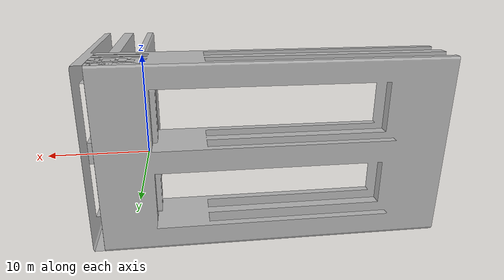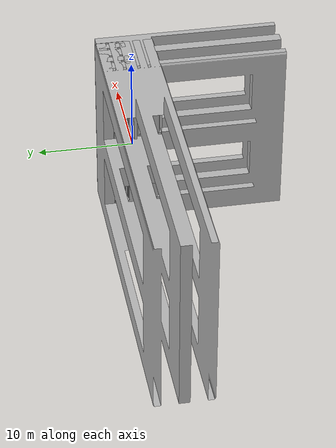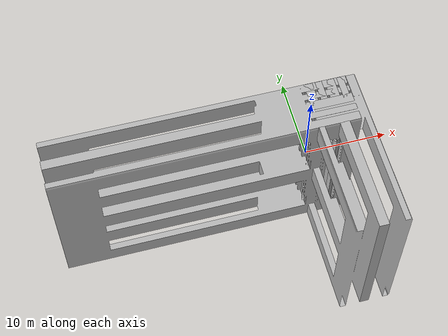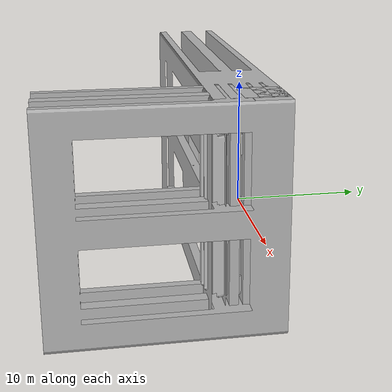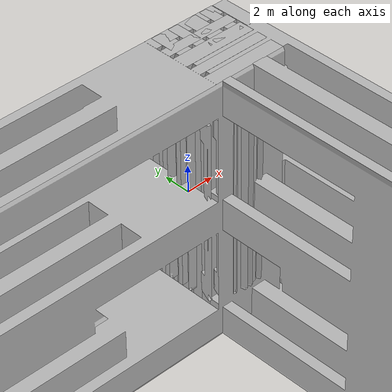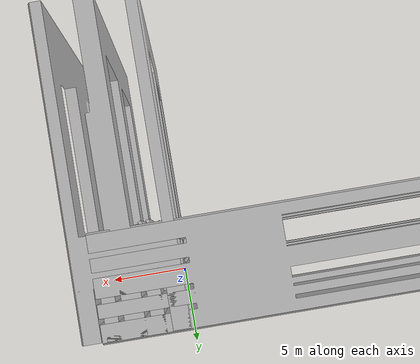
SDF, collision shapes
<sdf version='1.4'>
	<model name='2pallets+stepping_blocks'>
		<static>1</static>
		<link name='pallet_1'>
			<pose>-0.5 0 0.072 0 0 -1.5708</pose>
			<collision name='collision'>
				<geometry>
					<mesh>
						<uri>model://pallet_benchmark/mesh/pallet.dae</uri>
						<scale>0.787 24.75 1.6197</scale>
					</mesh>
				</geometry>
				<surface>
					<bounce>
						<restitution_coefficient>0.01</restitution_coefficient>
						<threshold>5</threshold>
					</bounce>
					<friction>
						<ode>
							<mu>10</mu>
							<mu2>10</mu2>
						</ode>
					</friction>
					<contact>
						<ode>
							<soft_cfm>0.001</soft_cfm>
							<kp>100000</kp>
							<kd>1000</kd>
						</ode>
					</contact>
				</surface>
				<max_contacts>10</max_contacts>
			</collision>
			<visual name='visual'>
				<geometry>
					<mesh>
						<uri>model://pallet_benchmark/mesh/pallet.dae</uri>
						<scale>0.787 24.75 1.6197</scale>
					</mesh>
				</geometry>
			</visual>
		</link>
		<link name='pallet_2'>
			<pose>3 0 0.072 0 -0 0</pose>
			<collision name='collision'>
				<geometry>
					<mesh>
						<uri>model://pallet_benchmark/mesh/pallet.dae</uri>
						<scale>0.787 13.50 1.6197</scale>
					</mesh>
				</geometry>
				<surface>
					<bounce>
						<restitution_coefficient>0.01</restitution_coefficient>
						<threshold>5</threshold>
					</bounce>
					<friction>
						<ode>
							<mu>10</mu>
							<mu2>10</mu2>
						</ode>
					</friction>
					<contact>
						<ode>
							<soft_cfm>0.001</soft_cfm>
							<kp>100000</kp>
							<kd>1000</kd>
						</ode>
					</contact>
				</surface>
				<max_contacts>10</max_contacts>
			</collision>
			<visual name='visual'>
				<geometry>
					<mesh>
						<uri>model://pallet_benchmark/mesh/pallet.dae</uri>
						<scale>0.787 13.50 1.6197</scale>
					</mesh>
				</geometry>
			</visual>
		</link>
		<link name='block_1'>
			<pose>0.783136 -0.259336 0.05 0 -0 0.8</pose>
			<collision name='collision'>
				<geometry>
					<mesh>
						<uri>model://blockwood_benchmark/mesh/pallet.dae</uri>
						<scale>0.246 2.46 1.1249</scale>
					</mesh>
				</geometry>
				<surface>
					<bounce>
						<restitution_coefficient>0.01</restitution_coefficient>
						<threshold>5</threshold>
					</bounce>
					<friction>
						<ode>
							<mu>10</mu>
							<mu2>10</mu2>
						</ode>
					</friction>
					<contact>
						<ode>
							<soft_cfm>0.001</soft_cfm>
							<kp>100000</kp>
							<kd>1000</kd>
						</ode>
					</contact>
				</surface>
				<max_contacts>10</max_contacts>
			</collision>
			<visual name='visual'>
				<geometry>
					<mesh>
						<uri>model://blockwood_benchmark/mesh/pallet.dae</uri>
						<scale>0.246 2.46 1.1249</scale>
					</mesh>
				</geometry>
			</visual>
		</link>
		<link name='block_2'>
			<pose>0.794058 0.11412 0.05 0 -0 0.56</pose>
			<collision name='collision'>
				<geometry>
					<mesh>
						<uri>model://blockwood_benchmark/mesh/pallet.dae</uri>
						<scale>0.246 2.46 1.1249</scale>
					</mesh>
				</geometry>
				<surface>
					<bounce>
						<restitution_coefficient>0.01</restitution_coefficient>
						<threshold>5</threshold>
					</bounce>
					<friction>
						<ode>
							<mu>10</mu>
							<mu2>10</mu2>
						</ode>
					</friction>
					<contact>
						<ode>
							<soft_cfm>0.001</soft_cfm>
							<kp>100000</kp>
							<kd>1000</kd>
						</ode>
					</contact>
				</surface>
				<max_contacts>10</max_contacts>
			</collision>
			<visual name='visual'>
				<geometry>
					<mesh>
						<uri>model://blockwood_benchmark/mesh/pallet.dae</uri>
						<scale>0.246 2.46 1.1249</scale>
					</mesh>
				</geometry>
			</visual>
		</link>
		<link name='block_3'>
			<pose>1.09791 -0.142692 0.05 0 0 -0.36</pose>
			<collision name='collision'>
				<geometry>
					<mesh>
						<uri>model://blockwood_benchmark/mesh/pallet.dae</uri>
						<scale>0.246 2.46 1.1249</scale>
					</mesh>
				</geometry>
				<surface>
					<bounce>
						<restitution_coefficient>0.01</restitution_coefficient>
						<threshold>5</threshold>
					</bounce>
					<friction>
						<ode>
							<mu>10</mu>
							<mu2>10</mu2>
						</ode>
					</friction>
					<contact>
						<ode>
							<soft_cfm>0.001</soft_cfm>
							<kp>100000</kp>
							<kd>1000</kd>
						</ode>
					</contact>
				</surface>
				<max_contacts>10</max_contacts>
			</collision>
			<visual name='visual'>
				<geometry>
					<mesh>
						<uri>model://blockwood_benchmark/mesh/pallet.dae</uri>
						<scale>0.246 2.46 1.1249</scale>
					</mesh>
				</geometry>
			</visual>
		</link>
		<link name='block_4'>
			<pose>1.16288 0.17517 0.05 0 -0 0</pose>
			<collision name='collision'>
				<geometry>
					<mesh>
						<uri>model://blockwood_benchmark/mesh/pallet.dae</uri>
						<scale>0.246 2.46 1.1249</scale>
					</mesh>
				</geometry>
				<surface>
					<bounce>
						<restitution_coefficient>0.01</restitution_coefficient>
						<threshold>5</threshold>
					</bounce>
					<friction>
						<ode>
							<mu>10</mu>
							<mu2>10</mu2>
						</ode>
					</friction>
					<contact>
						<ode>
							<soft_cfm>0.001</soft_cfm>
							<kp>100000</kp>
							<kd>1000</kd>
						</ode>
					</contact>
				</surface>
				<max_contacts>10</max_contacts>
			</collision>
			<visual name='visual'>
				<geometry>
					<mesh>
						<uri>model://blockwood_benchmark/mesh/pallet.dae</uri>
						<scale>0.246 2.46 1.1249</scale>
					</mesh>
				</geometry>
			</visual>
		</link>
		<link name='block_5'>
			<pose>1.37008 -0.40017 0.05 0 -0 0.52</pose>
			<collision name='collision'>
				<geometry>
					<mesh>
						<uri>model://blockwood_benchmark/mesh/pallet.dae</uri>
						<scale>0.246 2.46 1.1249</scale>
					</mesh>
				</geometry>
				<surface>
					<bounce>
						<restitution_coefficient>0.01</restitution_coefficient>
						<threshold>5</threshold>
					</bounce>
					<friction>
						<ode>
							<mu>10</mu>
							<mu2>10</mu2>
						</ode>
					</friction>
					<contact>
						<ode>
							<soft_cfm>0.001</soft_cfm>
							<kp>100000</kp>
							<kd>1000</kd>
						</ode>
					</contact>
				</surface>
				<max_contacts>10</max_contacts>
			</collision>
			<visual name='visual'>
				<geometry>
					<mesh>
						<uri>model://blockwood_benchmark/mesh/pallet.dae</uri>
						<scale>0.246 2.46 1.1249</scale>
					</mesh>
				</geometry>
			</visual>
		</link>
		<link name='block_6'>
			<pose>1.46639 -0.072299 0.05 0 -0 0</pose>
			<collision name='collision'>
				<geometry>
					<mesh>
						<uri>model://blockwood_benchmark/mesh/pallet.dae</uri>
						<scale>0.246 2.46 1.1249</scale>
					</mesh>
				</geometry>
				<surface>
					<bounce>
						<restitution_coefficient>0.01</restitution_coefficient>
						<threshold>5</threshold>
					</bounce>
					<friction>
						<ode>
							<mu>10</mu>
							<mu2>10</mu2>
						</ode>
					</friction>
					<contact>
						<ode>
							<soft_cfm>0.001</soft_cfm>
							<kp>100000</kp>
							<kd>1000</kd>
						</ode>
					</contact>
				</surface>
				<max_contacts>10</max_contacts>
			</collision>
			<visual name='visual'>
				<geometry>
					<mesh>
						<uri>model://blockwood_benchmark/mesh/pallet.dae</uri>
						<scale>0.246 2.46 1.1249</scale>
					</mesh>
				</geometry>
			</visual>
		</link>
		<link name='block_7'>
			<pose>1.48533 0.241091 0.05 0 -0 0.88</pose>
			<collision name='collision'>
				<geometry>
					<mesh>
						<uri>model://blockwood_benchmark/mesh/pallet.dae</uri>
						<scale>0.246 2.46 1.1249</scale>
					</mesh>
				</geometry>
				<surface>
					<bounce>
						<restitution_coefficient>0.01</restitution_coefficient>
						<threshold>5</threshold>
					</bounce>
					<friction>
						<ode>
							<mu>10</mu>
							<mu2>10</mu2>
						</ode>
					</friction>
					<contact>
						<ode>
							<soft_cfm>0.001</soft_cfm>
							<kp>100000</kp>
							<kd>1000</kd>
						</ode>
					</contact>
				</surface>
				<max_contacts>10</max_contacts>
			</collision>
		<visual name='visual'>
			<geometry>
				<mesh>
					<uri>model://blockwood_benchmark/mesh/pallet.dae</uri>
					<scale>0.246 2.46 1.1249</scale>
				</mesh>
			</geometry>
		</visual>
	</link>
	<link name='block_8'>
		<pose>1.7306 -0.340131 0.05 0 -0 0.24</pose>
		<collision name='collision'>
			<geometry>
				<mesh>
					<uri>model://blockwood_benchmark/mesh/pallet.dae</uri>
					<scale>0.246 2.46 1.1249</scale>
				</mesh>
			</geometry>
			<surface>
				<bounce>
					<restitution_coefficient>0.01</restitution_coefficient>
					<threshold>5</threshold>
				</bounce>
				<friction>
					<ode>
						<mu>10</mu>
						<mu2>10</mu2>
					</ode>
				</friction>
				<contact>
					<ode>
						<soft_cfm>0.001</soft_cfm>
						<kp>100000</kp>
						<kd>1000</kd>
					</ode>
				</contact>
			</surface>
			<max_contacts>10</max_contacts>
		</collision>
		<visual name='visual'>
			<geometry>
				<mesh>
					<uri>model://blockwood_benchmark/mesh/pallet.dae</uri>
					<scale>0.246 2.46 1.1249</scale>
				</mesh>
			</geometry>
		</visual>
	</link>
	<link name='block_9'>
		<pose>1.77848 0.045718 0.05 0 -0 0.48</pose>
		<collision name='collision'>
			<geometry>
				<mesh>
					<uri>model://blockwood_benchmark/mesh/pallet.dae</uri>
					<scale>0.246 2.46 1.1249</scale>
				</mesh>
			</geometry>
			<surface>
				<bounce>
					<restitution_coefficient>0.01</restitution_coefficient>
					<threshold>5</threshold>
				</bounce>
				<friction>
					<ode>
						<mu>10</mu>
						<mu2>10</mu2>
					</ode>
				</friction>
				<contact>
					<ode>
						<soft_cfm>0.001</soft_cfm>
						<kp>100000</kp>
						<kd>1000</kd>
					</ode>
				</contact>
			</surface>
			<max_contacts>10</max_contacts>
		</collision>
		<visual name='visual'>
			<geometry>
				<mesh>
					<uri>model://blockwood_benchmark/mesh/pallet.dae</uri>
					<scale>0.246 2.46 1.1249</scale>
				</mesh>
			</geometry>
		</visual>
	</link>
	<link name='block_10'>
		<pose>2.03712 -0.192702 0.05 0 0 -1.56</pose>
		<collision name='collision'>
			<geometry>
				<mesh>
					<uri>model://blockwood_benchmark/mesh/pallet.dae</uri>
					<scale>0.246 2.46 1.1249</scale>
				</mesh>
			</geometry>
			<surface>
				<bounce>
					<restitution_coefficient>0.01</restitution_coefficient>
					<threshold>5</threshold>
				</bounce>
				<friction>
					<ode>
						<mu>10</mu>
						<mu2>10</mu2>
					</ode>
				</friction>
				<contact>
					<ode>
						<soft_cfm>0.001</soft_cfm>
						<kp>100000</kp>
						<kd>1000</kd>
					</ode>
				</contact>
			</surface>
			<max_contacts>10</max_contacts>
		</collision>
		<visual name='visual'>
			<geometry>
				<mesh>
					<uri>model://blockwood_benchmark/mesh/pallet.dae</uri>
					<scale>0.246 2.46 1.1249</scale>
				</mesh>
			</geometry>
		</visual>
	</link>
	<link name='block_11'>
		<pose>2.06242 0.171136 0.05 0 -0 0.8</pose>
		<collision name='collision'>
			<geometry>
				<mesh>
					<uri>model://blockwood_benchmark/mesh/pallet.dae</uri>
					<scale>0.246 2.46 1.1249</scale>
				</mesh>
			</geometry>
			<surface>
				<bounce>
					<restitution_coefficient>0.01</restitution_coefficient>
					<threshold>5</threshold>
				</bounce>
				<friction>
					<ode>
						<mu>10</mu>
						<mu2>10</mu2>
					</ode>
				</friction>
				<contact>
					<ode>
						<soft_cfm>0.001</soft_cfm>
						<kp>100000</kp>
						<kd>1000</kd>
					</ode>
				</contact>
			</surface>
			<max_contacts>10</max_contacts>
		</collision>
		<visual name='visual'>
			<geometry>
				<mesh>
					<uri>model://blockwood_benchmark/mesh/pallet.dae</uri>
					<scale>0.246 2.46 1.1249</scale>
				</mesh>
			</geometry>
		</visual>
	</link>
	<link name='block_12'>
		<pose>2.37657 -0.266385 0.05 0 -0 0.48</pose>
		<collision name='collision'>
			<geometry>
				<mesh>
					<uri>model://blockwood_benchmark/mesh/pallet.dae</uri>
					<scale>0.246 2.46 1.1249</scale>
				</mesh>
			</geometry>
			<surface>
				<bounce>
					<restitution_coefficient>0.01</restitution_coefficient>
					<threshold>5</threshold>
				</bounce>
				<friction>
					<ode>
						<mu>10</mu>
						<mu2>10</mu2>
					</ode>
				</friction>
				<contact>
					<ode>
						<soft_cfm>0.001</soft_cfm>
						<kp>100000</kp>
						<kd>1000</kd>
					</ode>
				</contact>
			</surface>
			<max_contacts>10</max_contacts>
		</collision>
		<visual name='visual'>
			<geometry>
				<mesh>
					<uri>model://blockwood_benchmark/mesh/pallet.dae</uri>
					<scale>0.246 2.46 1.1249</scale>
				</mesh>
			</geometry>
		</visual>
	</link>
	<link name='block_13'>
		<pose>2.38173 0.046632 0.05 0 -0 0</pose>
		<collision name='collision'>
			<geometry>
				<mesh>
					<uri>model://blockwood_benchmark/mesh/pallet.dae</uri>
					<scale>0.246 2.46 1.1249</scale>
				</mesh>
			</geometry>
			<surface>
				<bounce>
					<restitution_coefficient>0.01</restitution_coefficient>
					<threshold>5</threshold>
				</bounce>
				<friction>
					<ode>
						<mu>10</mu>
						<mu2>10</mu2>
					</ode>
				</friction>
				<contact>
					<ode>
						<soft_cfm>0.001</soft_cfm>
						<kp>100000</kp>
						<kd>1000</kd>
					</ode>
				</contact>
			</surface>
			<max_contacts>10</max_contacts>
		</collision>
		<visual name='visual'>
			<geometry>
				<mesh>
					<uri>model://blockwood_benchmark/mesh/pallet.dae</uri>
					<scale>0.246 2.46 1.1249</scale>
				</mesh>
			</geometry>
		</visual>
	</link>
	<link name='block_14'>
		<pose>2.38179 0.359519 0.05 0 0 -0.52</pose>
		<collision name='collision'>
			<geometry>
				<mesh>
					<uri>model://blockwood_benchmark/mesh/pallet.dae</uri>
					<scale>0.246 2.46 1.1249</scale>
				</mesh>
			</geometry>
			<surface>
				<bounce>
					<restitution_coefficient>0.01</restitution_coefficient>
					<threshold>5</threshold>
				</bounce>
				<friction>
					<ode>
						<mu>10</mu>
						<mu2>10</mu2>
					</ode>
				</friction>
				<contact>
					<ode>
						<soft_cfm>0.001</soft_cfm>
						<kp>100000</kp>
						<kd>1000</kd>
					</ode>
				</contact>
			</surface>
			<max_contacts>10</max_contacts>
		</collision>
		<visual name='visual'>
			<geometry>
				<mesh>
					<uri>model://blockwood_benchmark/mesh/pallet.dae</uri>
					<scale>0.246 2.46 1.1249</scale>
				</mesh>
			</geometry>
		</visual>
	</link>
	<link name='lumber_1'>
		<pose>1.44064 -0.067843 0.123971 1.57025 1.4e-05 -0.280004</pose>
		<inertial>
			<mass>22.2</mass>
			<inertia>
				<ixx>0.039</ixx>
				<ixy>0</ixy>
				<ixz>0</ixz>
				<iyy>2.8</iyy>
				<iyz>0</iyz>
				<izz>2.766</izz>
			</inertia>
		</inertial>
		<collision name='collision'>
			<geometry>
				<box>
					<size>1.2192 0.038 0.1396</size>
				</box>
			</geometry>
			<surface>
				<bounce>
					<restitution_coefficient>0.01</restitution_coefficient>
					<threshold>5</threshold>
				</bounce>
				<friction>
					<ode>
						<mu>5</mu>
						<mu2>5</mu2>
					</ode>
				</friction>
				<contact>
					<ode>
						<soft_cfm>0.01</soft_cfm>
						<kp>10000</kp>
						<kd>1000</kd>
						<min_depth>0.001</min_depth>
					</ode>
				</contact>
			</surface>
			<max_contacts>10</max_contacts>
		</collision>
		<visual name='visual'>
			<geometry>
				<mesh>
					<uri>model://drc_practice_2x6/meshes/2x6x48.dae</uri>
				</mesh>
			</geometry>
		</visual>
	</link>
	<link name='lumber_2'>
		<pose>1.9253 0.28754 0.125282 -1.58241 0.119984 0.911288</pose>
		<inertial>
			<mass>27.4</mass>
			<inertia>
				<ixx>0.036</ixx>
				<ixy>0</ixy>
				<ixz>0</ixz>
				<iyy>2.366</iyy>
				<iyz>0</iyz>
				<izz>2.366</izz>
			</inertia>
		</inertial>
		<collision name='collision'>
			<geometry>
				<box>
					<size>1.016 0.0888 0.0888</size>
				</box>
			</geometry>
			<surface>
				<bounce>
					<restitution_coefficient>0.01</restitution_coefficient>
					<threshold>5</threshold>
				</bounce>
				<friction>
					<ode>
						<mu>10</mu>
						<mu2>10</mu2>
					</ode>
				</friction>
				<contact>
					<ode>
						<soft_cfm>0.001</soft_cfm>
						<kp>100000</kp>
						<kd>1000</kd>
					</ode>
				</contact>
			</surface>
			<max_contacts>10</max_contacts>
		</collision>
		<visual name='visual'>
			<geometry>
				<mesh>
					<uri>model://drc_practice_4x4x40/meshes/4x4x40.dae</uri>
				</mesh>
			</geometry>
		</visual>
	</link>
</model>
</sdf>
